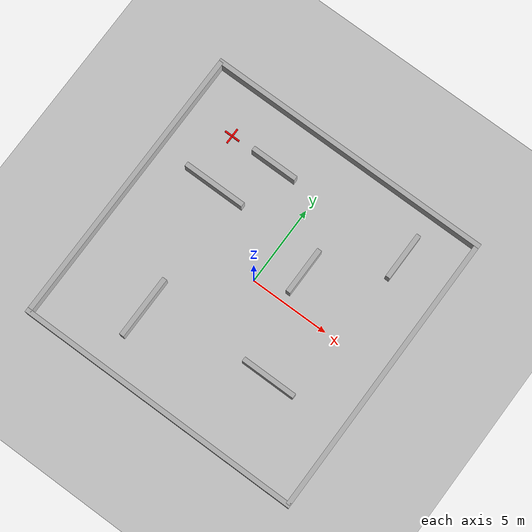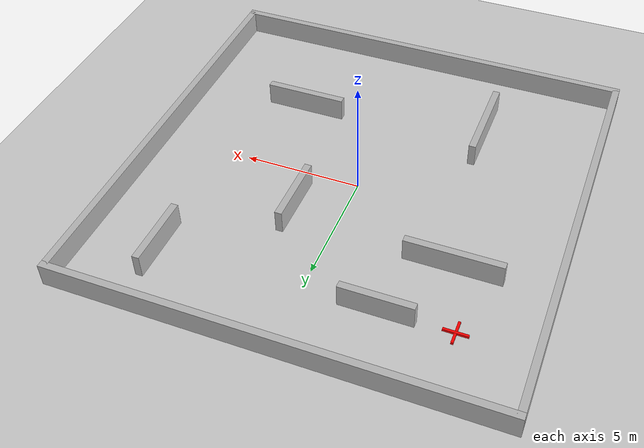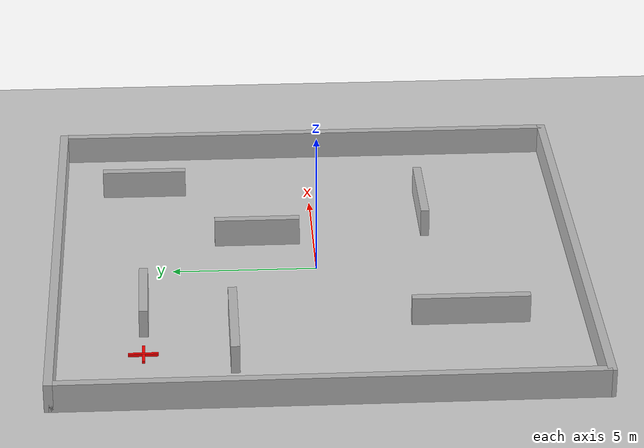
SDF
<?xml version="1.0" ?>
<sdf version="1.6">
  <world name="maze_world">

    <!-- 🌞 SUN -->
    <include>
      <uri>model://sun</uri>
    </include>

    <!-- 🌍 GROUND -->
    <include>
      <uri>model://ground_plane</uri>
    </include>

    <!-- 🎯 GOAL -->
    <model name="goal_marker">
      <static>true</static>
      <pose>-6 6 0.2 0 0 0</pose>
      <link name="link">
        <visual name="h">
          <geometry>
            <box><size>1 0.1 0.1</size></box>
          </geometry>
          <material>
            <ambient>1 0 0 1</ambient>
          </material>
        </visual>
        <visual name="v">
          <geometry>
            <box><size>0.1 1 0.1</size></box>
          </geometry>
          <material>
            <ambient>1 0 0 1</ambient>
          </material>
        </visual>
      </link>
    </model>

    <!-- 🧱 MURS EXTÉRIEURS (18x18, centré en 0,0) -->

    <model name="wall_bottom">
      <static>true</static>
      <pose>0 -9 0.5 0 0 0</pose>
      <link name="link">
        <collision name="c">
          <geometry><box><size>18.3 0.3 1</size></box></geometry>
        </collision>
        <visual name="v">
          <geometry><box><size>18.3 0.3 1</size></box></geometry>
        </visual>
      </link>
    </model>

    <model name="wall_top">
      <static>true</static>
      <pose>0 9 0.5 0 0 0</pose>
      <link name="link">
        <collision name="c">
          <geometry><box><size>18.3 0.3 1</size></box></geometry>
        </collision>
        <visual name="v">
          <geometry><box><size>18.3 0.3 1</size></box></geometry>
        </visual>
      </link>
    </model>

    <model name="wall_left">
      <static>true</static>
      <pose>-9 0 0.5 0 0 0</pose>
      <link name="link">
        <collision name="c">
          <geometry><box><size>0.3 18 1</size></box></geometry>
        </collision>
        <visual name="v">
          <geometry><box><size>0.3 18 1</size></box></geometry>
        </visual>
      </link>
    </model>

    <model name="wall_right">
      <static>true</static>
      <pose>9 0 0.5 0 0 0</pose>
      <link name="link">
        <collision name="c">
          <geometry><box><size>0.3 18 1</size></box></geometry>
        </collision>
        <visual name="v">
          <geometry><box><size>0.3 18 1</size></box></geometry>
        </visual>
      </link>
    </model>

    <!-- 🧠 OBSTACLES INTERNES (originaux) -->

    <model name="obs_1">
      <static>true</static>
      <pose>-3 6 0.5 0 0 0</pose>
      <link name="link">
        <collision name="c">
          <geometry><box><size>3 0.3 1</size></box></geometry>
        </collision>
        <visual name="v">
          <geometry><box><size>3 0.3 1</size></box></geometry>
        </visual>
      </link>
    </model>

    <model name="obs_2">
      <static>true</static>
      <pose>6 6 0.5 0 0 1.57</pose>
      <link name="link">
        <collision name="c">
          <geometry><box><size>3 0.3 1</size></box></geometry>
        </collision>
        <visual name="v">
          <geometry><box><size>3 0.3 1</size></box></geometry>
        </visual>
      </link>
    </model>

    <model name="obs_4">
      <static>true</static>
      <pose>2 2 0.5 0 0 1.57</pose>
      <link name="link">
        <collision name="c">
          <geometry><box><size>3 0.3 1</size></box></geometry>
        </collision>
        <visual name="v">
          <geometry><box><size>3 0.3 1</size></box></geometry>
        </visual>
      </link>
    </model>

    <!-- Obstacle 5 : côté gauche, zone négative x, horizontal -->
    <model name="obs_5">
      <static>true</static>
      <pose>-5 3 0.5 0 0 0</pose>
      <link name="link">
        <collision name="c">
          <geometry><box><size>4 0.3 1</size></box></geometry>
        </collision>
        <visual name="v">
          <geometry><box><size>4 0.3 1</size></box></geometry>
        </visual>
      </link>
    </model>

    <!-- Obstacle 6 : bas-gauche, zone négative x et y, vertical -->
    <model name="obs_6">
      <static>true</static>
      <pose>-4 -5 0.5 0 0 1.57</pose>
      <link name="link">
        <collision name="c">
          <geometry><box><size>4 0.3 1</size></box></geometry>
        </collision>
        <visual name="v">
          <geometry><box><size>4 0.3 1</size></box></geometry>
        </visual>
      </link>
    </model>

    <!-- 🆕 OBSTACLE 7 : zone bas-droite x=4, y=-4 -->

    <model name="obs_7">
      <static>true</static>
      <pose>4 -4 0.5 0 0 0</pose>
      <link name="link">
        <collision name="c">
          <geometry><box><size>3.5 0.3 1</size></box></geometry>
        </collision>
        <visual name="v">
          <geometry><box><size>3.5 0.3 1</size></box></geometry>
        </visual>
      </link>
    </model>

  </world>
</sdf>
